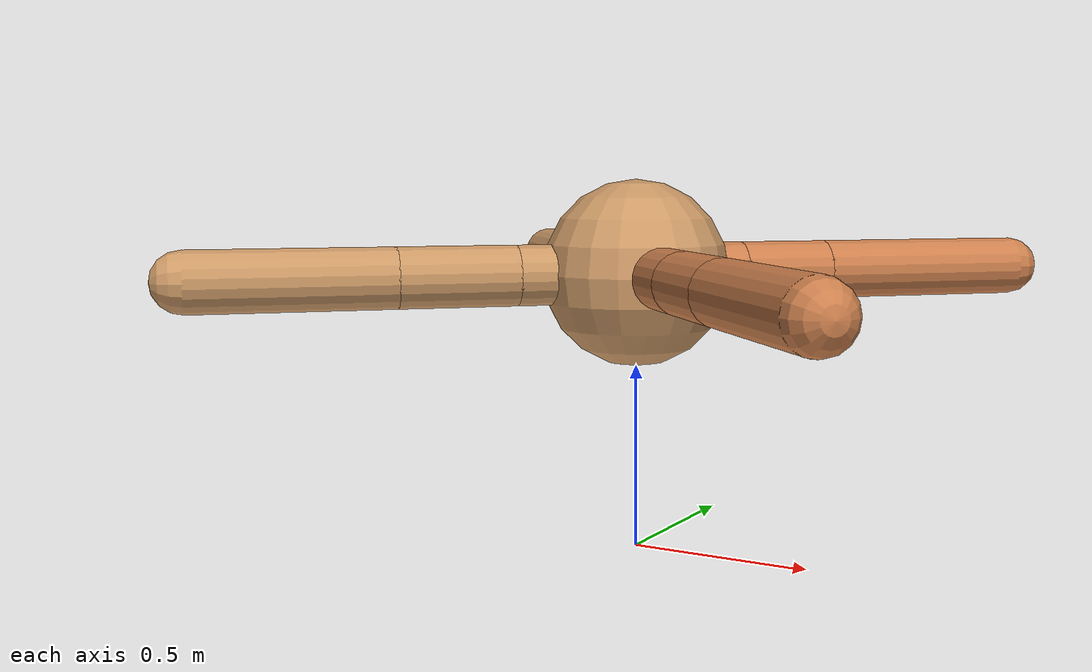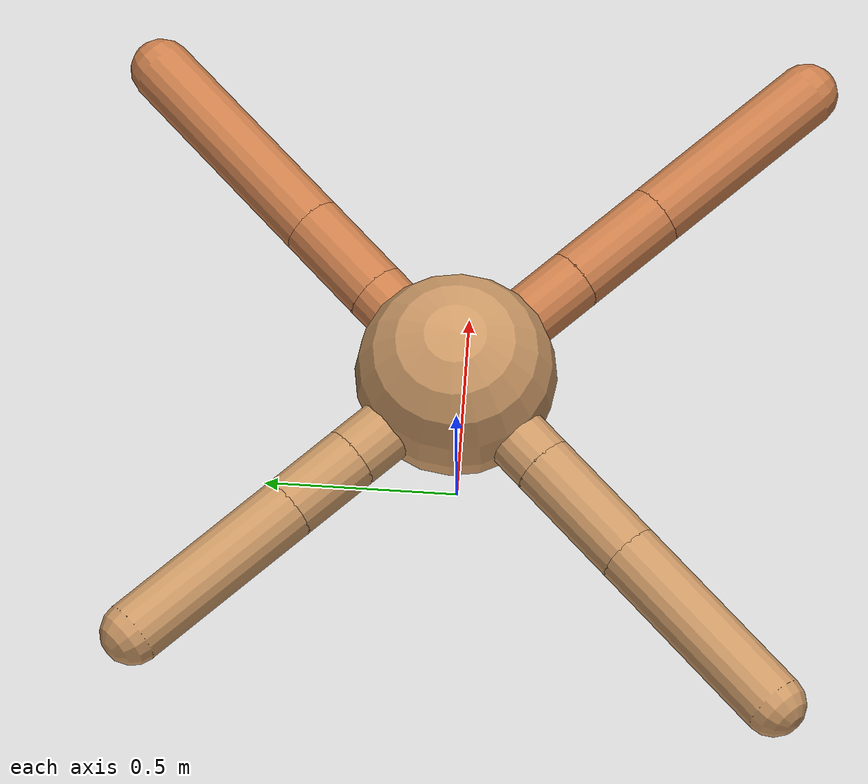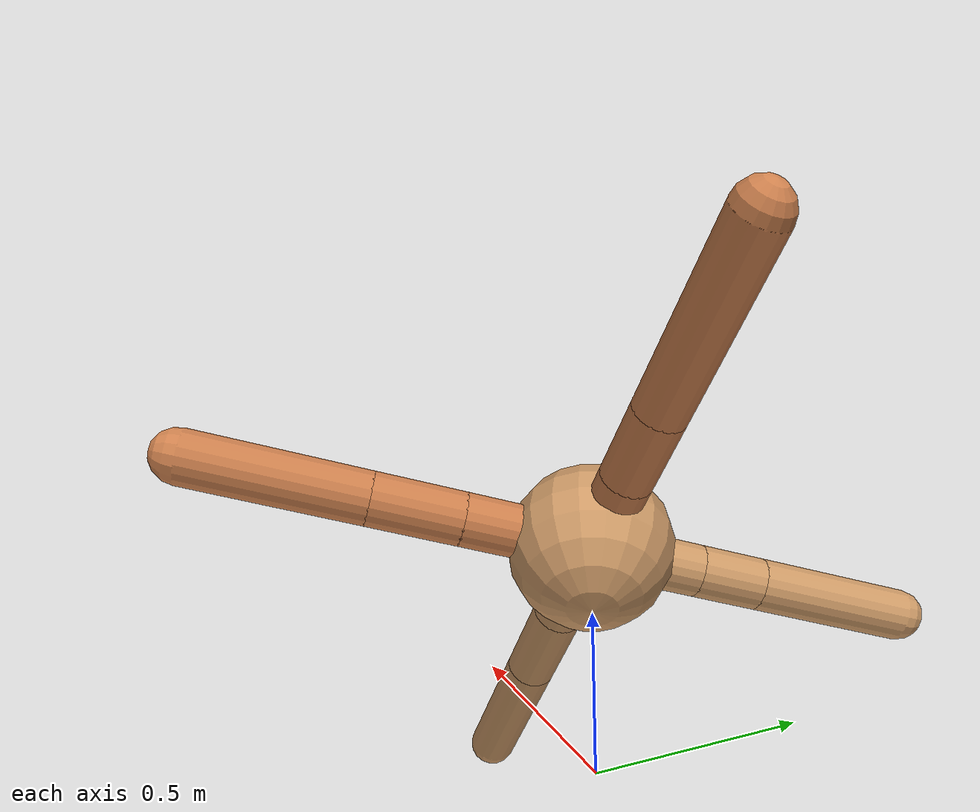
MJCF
<mujoco model="ant">
  <compiler angle="degree" coordinate="local" inertiafromgeom="true" />
  <option integrator="RK4" timestep="0.01" />
  <custom>
    <numeric data="0.0 0.0 0.55 1.0 0.0 0.0 0.0 0.0 1.0 0.0 -1.0 0.0 -1.0 0.0 1.0" name="init_qpos" />
  </custom>
  <default>
    <joint armature="1" damping="1" limited="true" />
    <geom conaffinity="0" condim="3" density="5.0" friction="1.5 0.1 0.1" margin="0.01" rgba="0.8 0.6 0.4 1" />
  </default>
  <worldbody>
    <body name="torso" pos="0 0 0.75">
      <geom name="torso_geom" pos="0 0 0" size="0.25" type="sphere" />

      <body name="front_left_leg" pos="0 0 0">
        <geom fromto="0.0 0.0 0.0 0.21129026955921276 0.21129026955921276 0.0" name="aux_1_geom" size="0.08" type="capsule" rgba=".8 .5 .3 1" />
        <body name="aux_1" pos="0.21129026955921276 0.21129026955921276 0.0">
          <joint axis="0 0 1" name="hip_1" pos="0.0 0.0 0.0" range="-40 40" type="hinge" />
          <geom fromto="0.0 0.0 0.0 0.1731002703121767 0.1731002703121767 0.0" name="left_leg_geom" size="0.08" type="capsule" rgba=".8 .5 .3 1" />
          <body pos="0.1731002703121767 0.1731002703121767 0.0" name="front_left_foot">
            <joint axis="-1 1 0" name="ankle_1" pos="0.0 0.0 0.0" range="30 100" type="hinge" />
            <geom fromto="0.0 0.0 0.0 0.41321154717109176 0.41321154717109176 0.0" name="left_ankle_geom" size="0.08" type="capsule" rgba=".8 .5 .3 1" />
          </body>
        </body>
      </body>
      <body name="front_right_leg" pos="0 0 0">
        <geom fromto="0.0 0.0 0.0 -0.23981683554855754 0.23981683554855754 0.0" name="aux_2_geom" size="0.08" type="capsule" />
        <body name="aux_2" pos="-0.23981683554855754 0.23981683554855754 0.0">
          <joint axis="0 0 1" name="hip_2" pos="0.0 0.0 0.0" range="-40 40" type="hinge" />
          <geom fromto="0.0 0.0 0.0 -0.14346513726967292 0.14346513726967292 0.0" name="right_leg_geom" size="0.08" type="capsule" />
          <body pos="-0.14346513726967292 0.14346513726967292 0.0" name="front_right_foot">
            <joint axis="1 1 0" name="ankle_2" pos="0.0 0.0 0.0" range="-100 -30" type="hinge" />
            <geom fromto="0.0 0.0 0.0 -0.3484704916831603 0.3484704916831603 0.0" name="right_ankle_geom" size="0.08" type="capsule" />
          </body>
        </body>
      </body>
      <body name="left_back_leg" pos="0 0 0">
        <geom fromto="0.0 0.0 0.0 -0.22968672259458908 -0.22968672259458908 0.0" name="aux_3_geom" size="0.08" type="capsule" />
        <body name="aux_3" pos="-0.22968672259458908 -0.22968672259458908 0.0">
          <joint axis="0 0 1" name="hip_3" pos="0.0 0.0 0.0" range="-40 40" type="hinge" />
          <geom fromto="0.0 0.0 0.0 -0.2190270486178054 -0.2190270486178054 0.0" name="back_leg_geom" size="0.08" type="capsule" />
          <body pos="-0.2190270486178054 -0.2190270486178054 0.0" name="left_back_foot">
            <joint axis="-1 1 0" name="ankle_3" pos="0.0 0.0 0.0" range="-100 -30" type="hinge" />
            <geom fromto="0.0 0.0 0.0 -0.3671786379882636 -0.3671786379882636 0.0" name="third_ankle_geom" size="0.08" type="capsule" />
          </body>
        </body>
      </body>
      <body name="right_back_leg" pos="0 0 0">
        <geom fromto="0.0 0.0 0.0 0.277184708037375 -0.277184708037375 0.0" name="aux_4_geom" size="0.08" type="capsule" rgba=".8 .5 .3 1" />
        <body name="aux_4" pos="0.277184708037375 -0.277184708037375 0.0">
          <joint axis="0 0 1" name="hip_4" pos="0.0 0.0 0.0" range="-40 40" type="hinge" />
          <geom fromto="0.0 0.0 0.0 0.18963804028635337 -0.18963804028635337 0.0" name="rightback_leg_geom" size="0.08" type="capsule" rgba=".8 .5 .3 1" />
          <body pos="0.18963804028635337 -0.18963804028635337 0.0" name="right_back_foot">
            <joint axis="1 1 0" name="ankle_4" pos="0.0 0.0 0.0" range="30 100" type="hinge" />
            <geom fromto="0.0 0.0 0.0 0.36425383374903764 -0.36425383374903764 0.0" name="fourth_ankle_geom" size="0.08" type="capsule" rgba=".8 .5 .3 1" />
          </body>
        </body>
      </body>
    </body>
  </worldbody>
  <actuator>
    <motor ctrllimited="true" ctrlrange="-1.0 1.0" joint="hip_4" gear="150" />
    <motor ctrllimited="true" ctrlrange="-1.0 1.0" joint="ankle_4" gear="150" />
    <motor ctrllimited="true" ctrlrange="-1.0 1.0" joint="hip_1" gear="150" />
    <motor ctrllimited="true" ctrlrange="-1.0 1.0" joint="ankle_1" gear="150" />
    <motor ctrllimited="true" ctrlrange="-1.0 1.0" joint="hip_2" gear="150" />
    <motor ctrllimited="true" ctrlrange="-1.0 1.0" joint="ankle_2" gear="150" />
    <motor ctrllimited="true" ctrlrange="-1.0 1.0" joint="hip_3" gear="150" />
    <motor ctrllimited="true" ctrlrange="-1.0 1.0" joint="ankle_3" gear="150" />
  </actuator>
</mujoco>
